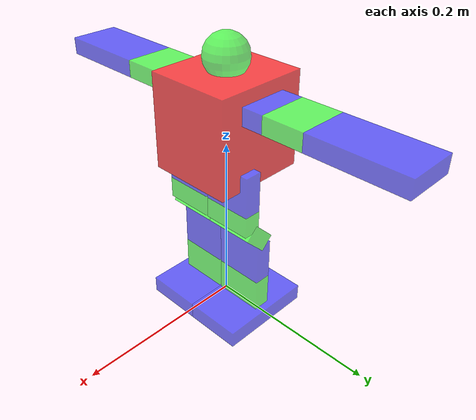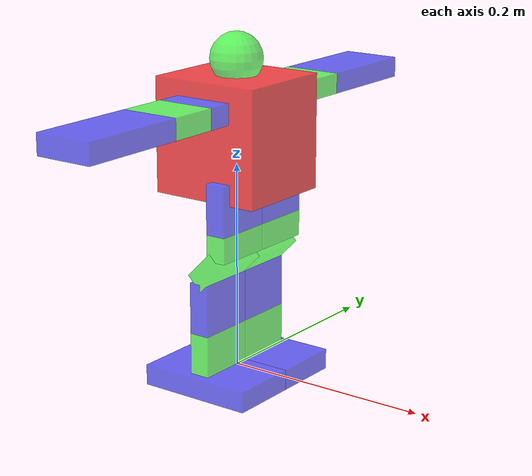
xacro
<?xml version="1.0" ?>
<robot name="jueying"
    xmlns:xacro="http://www.ros.org/wiki/xacro">

    <material name="black">
        <color rgba="0.0 0.0 0.0 1.0"/>
    </material>
    <material name="grey">
        <color rgba="0.35 0.35 0.35 1.0"/>
    </material>
    <material name="red">
        <color rgba="1.0 0.0 0.0 0.7"/>
    </material>
    <material name="green">
        <color rgba="0.0 1.0 0.0 0.6"/>
    </material>
    <material name="blue">
        <color rgba="0.0 0.0 1.0 0.6"/>
    </material>
    <material name="lightgrey">
        <color rgba="0.5 0.5 0.5 1.0"/>
    </material>
    <material name="silver">
        <color rgba="0.913725490196 0.913725490196 0.847058823529 1.0"/>
    </material>
    <material name="white">
        <color rgba="1.0 1.0 1.0 1.0"/>
    </material>

    <xacro:property name="motor_torque" value="0.5"/>
    <xacro:property name="motor_vec" value="0.1"/>
    <xacro:property name="motor_damp" value="0.01"/>
    <xacro:property name="motor_fric" value="0.1"/>
    <xacro:property name="PI" value="3.14159265359"/>
    <xacro:property name="body_l" value="0.11"/>
    <xacro:property name="body_w" value="0.1"/>
    <xacro:property name="body_h" value="0.11"/>
    <xacro:property name="head_l" value="0.05"/>
    <xacro:property name="hand_height" value="0.03"/>
    <xacro:property name="hand_l1" value="0.025"/>
    <xacro:property name="hand_l2" value="0.048"/>
    <xacro:property name="hand_l3" value="0.108"/>
    <xacro:property name="leg_l1" value="0.048"/>
    <xacro:property name="leg_l2" value="0.05"/>
    <xacro:property name="leg_l3" value="0.05"/>
    <xacro:property name="leg_l4" value="0.04"/>
    <xacro:property name="leg_offset" value="0.026"/>
    <xacro:property name="arm_width" value="0.058"/>
    <xacro:property name="arm_thick" value="0.02"/>
    <xacro:property name="foot_length" value="0.115"/>
    <xacro:property name="foot_width" value="0.068"/>
    <xacro:property name="foot_height" value="0.02"/>
    <xacro:property name="link_weight" value="0.05"/>

    <link name="origin_link">
        <inertial>
            <origin xyz="0 0 0" rpy="0 0 0" />
            <mass value="0.000001" />
            <inertia ixx="0" ixy="0" ixz="0" iyy="0" iyz="0" izz="0" />
        </inertial>
    </link>
    <joint name="origin_baselink_joint" type="fixed">
        <origin xyz="0 0 0.26" rpy="0 0 0"/>
        <parent link="origin_link"/>
        <child link="base_link"/>
    </joint>
    <link name="base_link">
        <inertial>
            <origin xyz="0.0 0.0 0.0" rpy="0 0 0" />
            <mass value="0.8" />
            <inertia ixx="0.0016" ixy="1e-10" ixz="1e-10" iyy="0.0016" iyz="1e-10" izz="0.0016" />
        </inertial>
        <visual>
            <origin xyz="0 0 ${-hand_height}" rpy="0 0 0" />
            <geometry>
                <box size="${body_l} ${body_w} ${body_h}"/>
            </geometry>
            <material name="red"/>
        </visual>
        <collision>
            <origin xyz="0 0 0" rpy="0 0 0" />
            <geometry>
                <box size="${body_l} ${body_w} ${body_h}"/>
            </geometry>
        </collision>
    </link>
    <joint name="head_joint" type="fixed">
        <origin xyz="0 0 0.07" rpy="0 0 0"/>
        <parent link="base_link"/>
        <child link="head_link"/>
    </joint>
    <link name="head_link">
        <inertial>
            <origin xyz="0.0 0.0 0.0" rpy="0 0 0" />
            <mass value="0.04" />
            <inertia ixx="1e-5" ixy="1e-12" ixz="1e-12" iyy="1e-5" iyz="1e-12" izz="1e-5" />
        </inertial>
        <visual>
            <origin xyz="0 0 ${-hand_height}" rpy="0 0 0" />
            <geometry>
                <sphere radius="${head_l/2.0}"/>
            </geometry>
            <material name="green"/>
        </visual>
        <collision>
            <origin xyz="0 0 0" rpy="0 0 0" />
            <geometry>
                <sphere radius="${head_l/2.0}"/>
            </geometry>
        </collision>
    </link>
    <xacro:macro name="aelos_hand" params="name is_right">
        <joint name="${name}_joint1" type="revolute">
            <origin xyz="0 ${is_right*(body_w/2)} 0" rpy="0 0 0" />
            <parent link="base_link" />
            <child link="${name}_link1" />
            <axis xyz="0 1 0" />
            <limit lower="${-PI/2.0}" upper="${PI/2.0}" effort="${motor_torque}" velocity="${motor_vec}" />
            <dynamics damping="${motor_damp}" friction="${motor_fric}" />
        </joint>
        <link name="${name}_link1">
            <inertial>
                <origin xyz="0.0 0.0 0.0" rpy="0 0 0" />
                <mass value="${link_weight}" />
                <inertia ixx="1e-7" ixy="1e-10" ixz="1e-10" iyy="1e-7" iyz="1e-10" izz="1e-7" />
            </inertial>
            <visual>
                <origin xyz="0 ${is_right*hand_l1/2} 0" rpy="0 0 0" />
                <geometry>
                    <box size="${arm_width} ${hand_l1} ${arm_thick}"/>
                </geometry>
                <material name="blue"/>
            </visual>
        </link>
        <joint name="${name}_joint2" type="revolute">
            <origin xyz="0 ${is_right*hand_l1} 0" rpy="0 0 0" />
            <parent link="${name}_link1" />
            <child link="${name}_link2" />
            <axis xyz="1 0 0" />
            <limit lower="${-PI/2.0}" upper="${PI/2.0}" effort="${motor_torque}" velocity="${motor_vec}" />
            <dynamics damping="${motor_damp}" friction="${motor_fric}" />
        </joint>
        <link name="${name}_link2">
            <inertial>
                <origin xyz="0.0 0.0 0.0" rpy="0 0 0" />
                <mass value="${link_weight}" />
                <inertia ixx="1e-7" ixy="1e-10" ixz="1e-10" iyy="1e-7" iyz="1e-10" izz="1e-7" />
            </inertial>
            <visual>
                <origin xyz="0 ${is_right*hand_l2/2} 0" rpy="0 0 0" />
                <geometry>
                    <box size="${arm_width} ${hand_l2} ${arm_thick}"/>
                </geometry>
                <material name="green"/>
            </visual>
        </link>
        <joint name="${name}_joint3" type="revolute">
            <origin xyz="0 ${is_right*hand_l2} 0" rpy="0 0 0" />
            <parent link="${name}_link2" />
            <child link="${name}_link3" />
            <axis xyz="1 0 0" />
            <limit lower="${-PI/2.0}" upper="${PI/2.0}" effort="${motor_torque}" velocity="${motor_vec}" />
            <dynamics damping="${motor_damp}" friction="${motor_fric}" />
        </joint>
        <link name="${name}_link3">
            <inertial>
                <origin xyz="0.0 0.0 0.0" rpy="0 0 0" />
                <mass value="${link_weight}" />
                <inertia ixx="1e-7" ixy="1e-10" ixz="1e-10" iyy="1e-7" iyz="1e-10" izz="1e-7" />
            </inertial>
            <visual>
                <origin xyz="0 ${is_right*hand_l3/2} 0" rpy="0 0 0" />
                <geometry>
                    <box size="${arm_width} ${hand_l3} ${arm_thick}"/>
                </geometry>
                <material name="blue"/>
            </visual>
        </link>
    </xacro:macro>
    <xacro:aelos_hand name="hand_left" is_right= "1"/>
    <xacro:aelos_hand name="hand_right" is_right= "-1"/>

    <xacro:macro name="aelos_leg" params="name is_right">
        <joint name="${name}_joint1" type="revolute">
            <origin xyz="0.02 ${is_right*leg_offset} -0.065" rpy="0 0 0" />
            <parent link="base_link" />
            <child link="${name}_link1" />
            <axis xyz="1 0 0" />
            <limit lower="${-PI/2.0}" upper="${PI/2.0}" effort="${motor_torque}" velocity="${motor_vec}" />
            <dynamics damping="${motor_damp}" friction="${motor_fric}" />
        </joint>
        <link name="${name}_link1">
            <inertial>
                <origin xyz="0.0 0.0 0.0" rpy="0 0 0" />
                <mass value="${link_weight}" />
                <inertia ixx="1e-7" ixy="1e-10" ixz="1e-10" iyy="1e-7" iyz="1e-10" izz="1e-7" />
            </inertial>
            <visual>
                <origin xyz="0 ${is_right*0.004} ${-leg_l1/2}" rpy="0 0 0" />
                <geometry>
                    <box size="${arm_thick} ${arm_width} ${leg_l1}"/>
                </geometry>
                <material name="blue"/>
            </visual>
            <collision>
                <origin xyz="0 ${is_right*0.004} ${-leg_l1/2}" rpy="0 0 0" />
                <geometry>
                    <box size="${arm_thick} ${arm_width} ${leg_l1}"/>
                </geometry>
            </collision>
        </link>
        <joint name="${name}_joint2" type="revolute">
            <origin xyz="0 0 ${-leg_l1}" rpy="0 0 0" />
            <parent link="${name}_link1" />
            <child link="${name}_link2" />
            <axis xyz="0 1 0" />
            <limit lower="${-PI/2.0}" upper="${PI/2.0}" effort="${motor_torque}" velocity="${motor_vec}" />
            <dynamics damping="${motor_damp}" friction="${motor_fric}" />
        </joint>
        <link name="${name}_link2">
            <inertial>
                <origin xyz="0.0 0.0 0.0" rpy="0 0 0" />
                <mass value="${link_weight}" />
                <inertia ixx="1e-7" ixy="1e-10" ixz="1e-10" iyy="1e-7" iyz="1e-10" izz="1e-7" />
            </inertial>
            <visual>
                <origin xyz="0 ${is_right*0.004} ${-leg_l2/4}" rpy="0 0 0" />
                <geometry>
                    <box size="${arm_thick} ${arm_width} ${leg_l2/2}"/>
                </geometry>
                <material name="green"/>
            </visual>
            <visual>
                <origin xyz="${-leg_l2/4} ${is_right*0.004} ${-leg_l2/4*3}" rpy="0 ${PI/4} 0" />
                <geometry>
                    <box size="${arm_thick} ${arm_width} ${leg_l2/2/sin(PI/4)}"/>
                </geometry>
                <material name="green"/>
            </visual>
            <collision>
                <origin xyz="0 ${is_right*0.004} ${-leg_l2/4}" rpy="0 0 0" />
                <geometry>
                    <box size="${arm_thick} ${arm_width} ${leg_l2/2}"/>
                </geometry>
            </collision>
            <collision>
                <origin xyz="${-leg_l2/4} ${is_right*0.004} ${-leg_l2/4*3}" rpy="0 ${PI/4} 0" />
                <geometry>
                    <box size="${arm_thick} ${arm_width} ${leg_l2/2/sin(PI/4)}"/>
                </geometry>
            </collision>
        </link>
        <joint name="${name}_joint3" type="revolute">
            <origin xyz="-0.02 0 ${-leg_l2}" rpy="0 0 0" />
            <parent link="${name}_link2" />
            <child link="${name}_link3" />
            <axis xyz="0 1 0" />
            <limit lower="${-PI/2.0}" upper="${PI/2.0}" effort="${motor_torque}" velocity="${motor_vec}" />
            <dynamics damping="${motor_damp}" friction="${motor_fric}" />
        </joint>
        <link name="${name}_link3">
            <inertial>
                <origin xyz="0.0 0.0 0.0" rpy="0 0 0" />
                <mass value="${link_weight}" />
                <inertia ixx="1e-7" ixy="1e-10" ixz="1e-10" iyy="1e-7" iyz="1e-10" izz="1e-7" />
            </inertial>
            <visual>
                <origin xyz="0 ${is_right*0.004} ${-leg_l3/2}" rpy="0 0 0" />
                <geometry>
                    <box size="${arm_thick} ${arm_width} ${leg_l3}"/>
                </geometry>
                <material name="blue"/>
            </visual>
            <collision>
                <origin xyz="0 ${is_right*0.004} ${-leg_l3/2}" rpy="0 0 0" />
                <geometry>
                    <box size="${arm_thick} ${arm_width} ${leg_l3}"/>
                </geometry>
            </collision>
        </link>
        <joint name="${name}_joint4" type="revolute">
            <origin xyz="0 0 ${-leg_l3}" rpy="0 0 0" />
            <parent link="${name}_link3" />
            <child link="${name}_link4" />
            <axis xyz="0 1 0" />
            <limit lower="${-PI/2.0}" upper="${PI/2.0}" effort="${motor_torque}" velocity="${motor_vec}" />
            <dynamics damping="${motor_damp}" friction="${motor_fric}" />
        </joint>
        <link name="${name}_link4">
            <inertial>
                <origin xyz="0.0 0.0 0.0" rpy="0 0 0" />
                <mass value="${link_weight}" />
                <inertia ixx="1e-7" ixy="1e-10" ixz="1e-10" iyy="1e-7" iyz="1e-10" izz="1e-7" />
            </inertial>
            <visual>
                <origin xyz="0 ${is_right*0.004} ${-leg_l4/2}" rpy="0 0 0" />
                <geometry>
                    <box size="${arm_thick} ${arm_width} ${leg_l4}"/>
                </geometry>
                <material name="green"/>
            </visual>
            <collision>
                <origin xyz="0 ${is_right*0.004} ${-leg_l4/2}" rpy="0 0 0" />
                <geometry>
                    <box size="${arm_thick} ${arm_width} ${leg_l4}"/>
                </geometry>
            </collision>
        </link>
        <joint name="${name}_joint5" type="revolute">
            <origin xyz="0 0 ${-leg_l4}" rpy="0 0 0" />
            <parent link="${name}_link4" />
            <child link="${name}_link5" />
            <axis xyz="1 0 0" />
            <limit lower="${-PI/2.0}" upper="${PI/2.0}" effort="${motor_torque}" velocity="${motor_vec}" />
            <dynamics damping="${motor_damp}" friction="${motor_fric}" />
        </joint>
        <link name="${name}_link5">
            <inertial>
                <origin xyz="0.0 0.0 0.0" rpy="0 0 0" />
                <mass value="${link_weight}" />
                <inertia ixx="1e-7" ixy="1e-10" ixz="1e-10" iyy="1e-7" iyz="1e-10" izz="1e-7" />
            </inertial>
            <visual>
                <origin xyz="0 ${is_right*0.008} ${-foot_height/2}" rpy="0 0 0" />
                <geometry>
                    <box size="${foot_length} ${foot_width} ${foot_height}"/>
                </geometry>
                <material name="blue"/>
            </visual>
            <collision>
                <origin xyz="0 ${is_right*0.008} ${-foot_height/2}" rpy="0 0 0" />
                <geometry>
                    <box size="${foot_length} ${foot_width} ${foot_height}"/>
                </geometry>
            </collision>
        </link>
    </xacro:macro>
    <xacro:aelos_leg name="leg_left" is_right= "-1"/>
    <xacro:aelos_leg name="leg_right" is_right= "1"/>
</robot>
